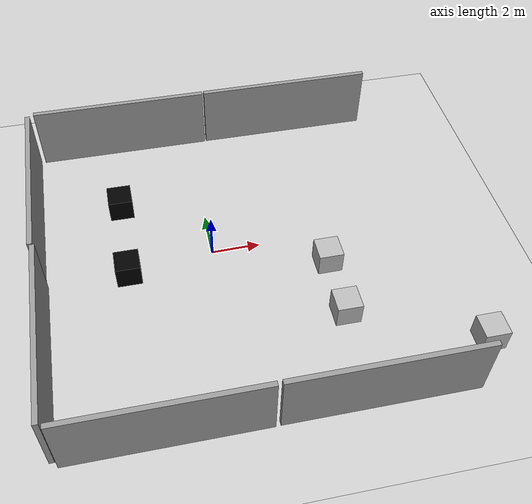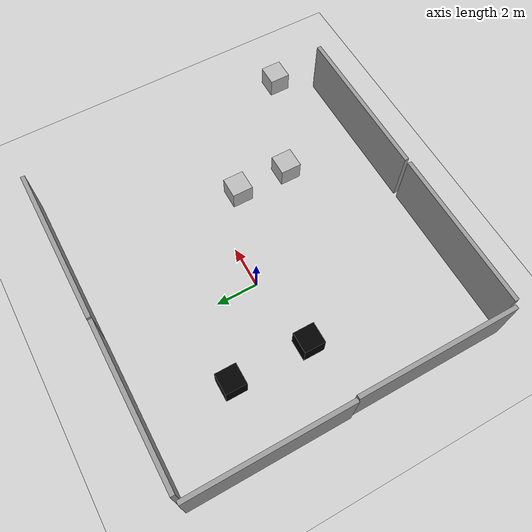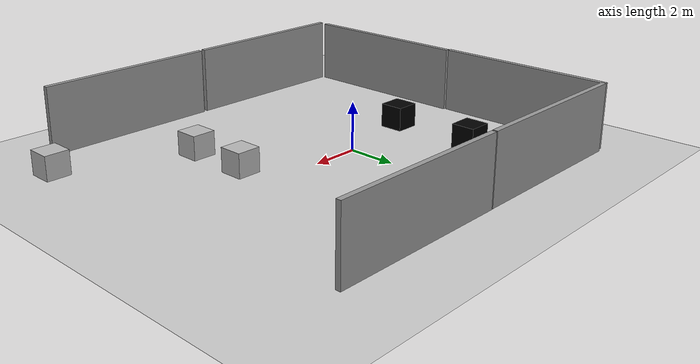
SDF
<sdf version="1.7">
 <world name="default">
  <model name="ground_plane">
   <static>1</static>
   <link name="link">
    <collision name="collision">
     <geometry><plane><normal>0 0 1</normal><size>100 100</size></plane></geometry>
     <surface><friction><ode><mu>100</mu><mu2>50</mu2></ode></friction></surface>
    </collision>
    <visual name="visual">
     <cast_shadows>0</cast_shadows>
     <geometry><plane><normal>0 0 1</normal><size>100 100</size></plane></geometry>
     <material>
      <script><uri>file://media/materials/scripts/gazebo.material</uri><name>Gazebo/Grey</name></script>
     </material>
    </visual>
   </link>
  </model>
  <light name="sun" type="directional">
   <pose>0 0 10 0 -0 0</pose>
   <diffuse>0.8 0.8 0.8 1</diffuse>
   <specular>0.2 0.2 0.2 1</specular>
   <attenuation>
    <range>1000</range>
    <constant>0.9</constant>
    <linear>0.01</linear>
    <quadratic>0.001</quadratic>
   </attenuation>
   <direction>-0.5 0.1 -0.9</direction>
   <spot><inner_angle>0</inner_angle><outer_angle>0</outer_angle><falloff>0</falloff></spot>
  </light>
  <gravity>0 0 -9.8</gravity>
  <magnetic_field>6e-06 2.3e-05 -4.2e-05</magnetic_field>
  <atmosphere type="adiabatic"/>
  <physics type="ode">
   <max_step_size>0.001</max_step_size>
   <real_time_factor>1</real_time_factor>
   <real_time_update_rate>1000</real_time_update_rate>
  </physics>
  <scene><ambient>0.4 0.4 0.4 1</ambient><background>0.7 0.7 0.7 1</background><shadows>1</shadows></scene>
  <spherical_coordinates>
   <surface_model>EARTH_WGS84</surface_model>
   <latitude_deg>0</latitude_deg>
   <longitude_deg>0</longitude_deg>
   <elevation>0</elevation>
   <heading_deg>0</heading_deg>
  </spherical_coordinates>
  <model name="box_clone">
   <pose>4.54019 -4.10633 0.5 3.14159 -1.57079 3.14159</pose>
   <link name="link">
    <collision name="collision"><geometry><box><size>1 1 1</size></box></geometry></collision>
    <visual name="visual"><geometry><box><size>1 1 1</size></box></geometry></visual>
    <inertial>
     <inertia><ixx>1</ixx><ixy>0</ixy><ixz>0</ixz><iyy>1</iyy><iyz>0</iyz><izz>1</izz></inertia>
     <mass>1</mass>
    </inertial>
   </link>
   <plugin name="hand_of_god" filename="libgazebo_ros_hand_of_god.so">
    <ros><namespace>/demo</namespace></ros>
    <link_name>link</link_name>
    <frame_id>link</frame_id>
   </plugin>
  </model>
  <model name="box_clone_2">
   <pose>9.51904 -6.35094 0.5 3.14159 -1.57079 3.14159</pose>
   <link name="link">
    <collision name="collision"><geometry><box><size>1 1 1</size></box></geometry></collision>
    <visual name="visual"><geometry><box><size>1 1 1</size></box></geometry></visual>
    <inertial>
     <inertia><ixx>1</ixx><ixy>0</ixy><ixz>0</ixz><iyy>1</iyy><iyz>0</iyz><izz>1</izz></inertia>
     <mass>1</mass>
    </inertial>
   </link>
   <plugin name="hand_of_god" filename="libgazebo_ros_hand_of_god.so">
    <ros><namespace>/demo</namespace></ros>
    <link_name>link</link_name>
    <frame_id>link</frame_id>
   </plugin>
  </model>
  <model name="box_clone_0">
   <link name="link">
    <inertial>
     <inertia><ixx>1</ixx><ixy>0</ixy><ixz>0</ixz><iyy>1</iyy><iyz>0</iyz><izz>1</izz></inertia>
     <mass>1</mass>
    </inertial>
    <visual name="visual">
     <geometry><box><size>1 1 1</size></box></geometry>
     <material>
      <shader type="pixel"><normal_map>__default__</normal_map></shader>
      <script><name>ModelPreview_4::link::visual_MATERIAL_</name><uri>__default__</uri></script>
      <ambient>0 0.5 0.5 1</ambient>
      <diffuse>0 0 0 1</diffuse>
      <specular>0 0 0 1</specular>
      <emissive>0 0 0 1</emissive>
     </material>
    </visual>
    <collision name="collision">
     <geometry><box><size>1 1 1</size></box></geometry>
     <surface>
      <friction>
       <ode><mu>1</mu><mu2>1</mu2><fdir1>0 0 0</fdir1><slip1>0</slip1><slip2>0</slip2></ode>
       <torsional>
        <coefficient>1</coefficient>
        <patch_radius>0</patch_radius>
        <surface_radius>0</surface_radius>
        <use_patch_radius>1</use_patch_radius>
        <ode><slip>0</slip></ode>
       </torsional>
      </friction>
      <bounce><restitution_coefficient>0</restitution_coefficient><threshold>1e+06</threshold></bounce>
      <contact>
       <collide_without_contact>0</collide_without_contact>
       <collide_without_contact_bitmask>1</collide_without_contact_bitmask>
       <collide_bitmask>1</collide_bitmask>
       <ode>
        <soft_cfm>0</soft_cfm>
        <soft_erp>0.2</soft_erp>
        <kp>1e+13</kp>
        <kd>1</kd>
        <max_vel>0.01</max_vel>
        <min_depth>0</min_depth>
       </ode>
       <bullet>
        <split_impulse>1</split_impulse>
        <split_impulse_penetration_threshold>-0.01</split_impulse_penetration_threshold>
        <soft_cfm>0</soft_cfm>
        <soft_erp>0.2</soft_erp>
        <kp>1e+13</kp>
        <kd>1</kd>
       </bullet>
      </contact>
     </surface>
    </collision>
   </link>
   <static>0</static>
   <plugin name="hand_of_god" filename="libgazebo_ros_hand_of_god.so">
    <ros><namespace>/demo</namespace></ros>
    <link_name>link</link_name>
    <frame_id>link</frame_id>
   </plugin>
   <pose>-3.49676 3.12911 0.5 3.14159 -1.57079 3.14159</pose>
  </model>
  <model name="box_clone_clone">
   <pose>4.53243 -1.50621 0.5 -3.14079 -1.57079 3.14159</pose>
   <link name="link">
    <collision name="collision"><geometry><box><size>1 1 1</size></box></geometry></collision>
    <visual name="visual"><geometry><box><size>1 1 1</size></box></geometry></visual>
    <inertial>
     <inertia><ixx>1</ixx><ixy>0</ixy><ixz>0</ixz><iyy>1</iyy><iyz>0</iyz><izz>1</izz></inertia>
     <mass>1</mass>
    </inertial>
   </link>
   <plugin name="hand_of_god" filename="libgazebo_ros_hand_of_god.so">
    <ros><namespace>/demo</namespace></ros>
    <link_name>link</link_name>
    <frame_id>link</frame_id>
   </plugin>
  </model>
  <model name="grey_wall">
   <static>1</static>
   <link name="link">
    <pose>0 0 1.4 0 -0 0</pose>
    <collision name="collision"><geometry><box><size>7.5 0.2 2.8</size></box></geometry></collision>
    <visual name="visual">
     <cast_shadows>0</cast_shadows>
     <geometry><box><size>7.5 0.2 2.8</size></box></geometry>
     <material>
      <script>
       <uri>model://grey_wall/materials/scripts</uri>
       <uri>model://grey_wall/materials/textures</uri>
       <name>vrc/grey_wall</name>
      </script>
     </material>
    </visual>
   </link>
   <pose>4.64541 7.04065 0 0 -0 0</pose>
  </model>
  <model name="grey_wall_clone">
   <static>1</static>
   <link name="link">
    <pose>0 0 1.4 0 -0 0</pose>
    <collision name="collision"><geometry><box><size>7.5 0.2 2.8</size></box></geometry></collision>
    <visual name="visual">
     <cast_shadows>0</cast_shadows>
     <geometry><box><size>7.5 0.2 2.8</size></box></geometry>
     <material>
      <script>
       <uri>model://grey_wall/materials/scripts</uri>
       <uri>model://grey_wall/materials/textures</uri>
       <name>vrc/grey_wall</name>
      </script>
     </material>
    </visual>
   </link>
   <pose>4.74199 -8.15563 0 0 -0 0</pose>
  </model>
  <model name="grey_wall_0">
   <static>1</static>
   <link name="link">
    <pose>0 0 1.4 0 -0 0</pose>
    <collision name="collision"><geometry><box><size>7.5 0.2 2.8</size></box></geometry></collision>
    <visual name="visual">
     <cast_shadows>0</cast_shadows>
     <geometry><box><size>7.5 0.2 2.8</size></box></geometry>
     <material>
      <script>
       <uri>model://grey_wall/materials/scripts</uri>
       <uri>model://grey_wall/materials/textures</uri>
       <name>vrc/grey_wall</name>
      </script>
     </material>
    </visual>
   </link>
   <pose>-2.93516 -8.1675 0 0 -0 0</pose>
  </model>
  <model name="grey_wall_1">
   <static>1</static>
   <link name="link">
    <pose>0 0 1.4 0 -0 0</pose>
    <collision name="collision"><geometry><box><size>7.5 0.2 2.8</size></box></geometry></collision>
    <visual name="visual">
     <cast_shadows>0</cast_shadows>
     <geometry><box><size>7.5 0.2 2.8</size></box></geometry>
     <material>
      <script>
       <uri>model://grey_wall/materials/scripts</uri>
       <uri>model://grey_wall/materials/textures</uri>
       <name>vrc/grey_wall</name>
      </script>
     </material>
    </visual>
   </link>
   <pose>-2.92816 7.0302 0 0 -0 0</pose>
  </model>
  <model name="grey_wall_2">
   <link name="link">
    <pose>-3.84773 -0.297468 1.32236 0 -0 1.5707</pose>
    <inertial>
     <mass>1</mass>
     <inertia><ixx>1</ixx><ixy>0</ixy><ixz>0</ixz><iyy>1</iyy><iyz>0</iyz><izz>1</izz></inertia>
    </inertial>
    <visual name="visual">
     <cast_shadows>0</cast_shadows>
     <geometry><box><size>7.5 0.2 2.8</size></box></geometry>
     <material>
      <script>
       <uri>model://grey_wall/materials/scripts</uri>
       <uri>model://grey_wall/materials/textures</uri>
       <name>vrc/grey_wall</name>
      </script>
      <shader type="pixel"><normal_map>__default__</normal_map></shader>
      <ambient>1 1 1 1</ambient>
      <diffuse>1 1 1 1</diffuse>
      <specular>0 0 0 1</specular>
      <emissive>0 0 0 1</emissive>
     </material>
    </visual>
    <collision name="collision">
     <geometry><box><size>7.5 0.2 2.8</size></box></geometry>
     <surface>
      <friction>
       <ode><mu>1</mu><mu2>1</mu2><fdir1>0 0 0</fdir1><slip1>0</slip1><slip2>0</slip2></ode>
       <torsional>
        <coefficient>1</coefficient>
        <patch_radius>0</patch_radius>
        <surface_radius>0</surface_radius>
        <use_patch_radius>1</use_patch_radius>
        <ode><slip>0</slip></ode>
       </torsional>
      </friction>
      <bounce><restitution_coefficient>0</restitution_coefficient><threshold>1e+06</threshold></bounce>
      <contact>
       <collide_without_contact>0</collide_without_contact>
       <collide_without_contact_bitmask>1</collide_without_contact_bitmask>
       <collide_bitmask>1</collide_bitmask>
       <ode>
        <soft_cfm>0</soft_cfm>
        <soft_erp>0.2</soft_erp>
        <kp>1e+13</kp>
        <kd>1</kd>
        <max_vel>0.01</max_vel>
        <min_depth>0</min_depth>
       </ode>
       <bullet>
        <split_impulse>1</split_impulse>
        <split_impulse_penetration_threshold>-0.01</split_impulse_penetration_threshold>
        <soft_cfm>0</soft_cfm>
        <soft_erp>0.2</soft_erp>
        <kp>1e+13</kp>
        <kd>1</kd>
       </bullet>
      </contact>
     </surface>
    </collision>
   </link>
   <link name="link_clone">
    <pose>-3.92367 7.2443 1.32236 0 -0 1.5707</pose>
    <inertial>
     <mass>1</mass>
     <inertia><ixx>1</ixx><ixy>0</ixy><ixz>0</ixz><iyy>1</iyy><iyz>0</iyz><izz>1</izz></inertia>
    </inertial>
    <visual name="visual">
     <cast_shadows>0</cast_shadows>
     <geometry><box><size>7.5 0.2 2.8</size></box></geometry>
     <material>
      <script>
       <uri>model://grey_wall/materials/scripts</uri>
       <uri>model://grey_wall/materials/textures</uri>
       <name>vrc/grey_wall</name>
      </script>
      <shader type="pixel"><normal_map>__default__</normal_map></shader>
      <ambient>1 1 1 1</ambient>
      <diffuse>1 1 1 1</diffuse>
      <specular>0 0 0 1</specular>
      <emissive>0 0 0 1</emissive>
     </material>
    </visual>
    <collision name="collision">
     <geometry><box><size>7.5 0.2 2.8</size></box></geometry>
     <surface>
      <friction>
       <ode><mu>1</mu><mu2>1</mu2><fdir1>0 0 0</fdir1><slip1>0</slip1><slip2>0</slip2></ode>
       <torsional>
        <coefficient>1</coefficient>
        <patch_radius>0</patch_radius>
        <surface_radius>0</surface_radius>
        <use_patch_radius>1</use_patch_radius>
        <ode><slip>0</slip></ode>
       </torsional>
      </friction>
      <bounce><restitution_coefficient>0</restitution_coefficient><threshold>1e+06</threshold></bounce>
      <contact>
       <collide_without_contact>0</collide_without_contact>
       <collide_without_contact_bitmask>1</collide_without_contact_bitmask>
       <collide_bitmask>1</collide_bitmask>
       <ode>
        <soft_cfm>0</soft_cfm>
        <soft_erp>0.2</soft_erp>
        <kp>1e+13</kp>
        <kd>1</kd>
        <max_vel>0.01</max_vel>
        <min_depth>0</min_depth>
       </ode>
       <bullet>
        <split_impulse>1</split_impulse>
        <split_impulse_penetration_threshold>-0.01</split_impulse_penetration_threshold>
        <soft_cfm>0</soft_cfm>
        <soft_erp>0.2</soft_erp>
        <kp>1e+13</kp>
        <kd>1</kd>
       </bullet>
      </contact>
     </surface>
    </collision>
   </link>
   <static>1</static>
   <pose>-3.03476 -3.99505 0 0 -0 0</pose>
  </model>
  <model name="box_clone_0_clone">
   <link name="link">
    <inertial>
     <inertia><ixx>1</ixx><ixy>0</ixy><ixz>0</ixz><iyy>1</iyy><iyz>0</iyz><izz>1</izz></inertia>
     <mass>1</mass>
    </inertial>
    <pose>-0 -1.04434 0.026922 0 -0 0</pose>
    <visual name="visual">
     <geometry><box><size>1 1 1</size></box></geometry>
     <material>
      <shader type="pixel"><normal_map>__default__</normal_map></shader>
      <script><name>ModelPreview_4::link::visual_MATERIAL_</name><uri>__default__</uri></script>
      <ambient>0 0.5 0.5 1</ambient>
      <diffuse>0 0 0 1</diffuse>
      <specular>0 0 0 1</specular>
      <emissive>0 0 0 1</emissive>
     </material>
    </visual>
    <collision name="collision">
     <geometry><box><size>1 1 1</size></box></geometry>
     <surface>
      <friction>
       <ode><mu>1</mu><mu2>1</mu2><fdir1>0 0 0</fdir1><slip1>0</slip1><slip2>0</slip2></ode>
       <torsional>
        <coefficient>1</coefficient>
        <patch_radius>0</patch_radius>
        <surface_radius>0</surface_radius>
        <use_patch_radius>1</use_patch_radius>
        <ode><slip>0</slip></ode>
       </torsional>
      </friction>
      <bounce><restitution_coefficient>0</restitution_coefficient><threshold>1e+06</threshold></bounce>
      <contact>
       <collide_without_contact>0</collide_without_contact>
       <collide_without_contact_bitmask>1</collide_without_contact_bitmask>
       <collide_bitmask>1</collide_bitmask>
       <ode>
        <soft_cfm>0</soft_cfm>
        <soft_erp>0.2</soft_erp>
        <kp>1e+13</kp>
        <kd>1</kd>
        <max_vel>0.01</max_vel>
        <min_depth>0</min_depth>
       </ode>
       <bullet>
        <split_impulse>1</split_impulse>
        <split_impulse_penetration_threshold>-0.01</split_impulse_penetration_threshold>
        <soft_cfm>0</soft_cfm>
        <soft_erp>0.2</soft_erp>
        <kp>1e+13</kp>
        <kd>1</kd>
       </bullet>
      </contact>
     </surface>
    </collision>
   </link>
   <static>0</static>
   <plugin name="hand_of_god" filename="libgazebo_ros_hand_of_god.so">
    <ros><namespace>/demo</namespace></ros>
    <link_name>link</link_name>
    <frame_id>link</frame_id>
   </plugin>
   <pose>-3.50872 0.490548 0.5 3.14159 -1.57079 3.14159</pose>
  </model>
 </world>
</sdf>
